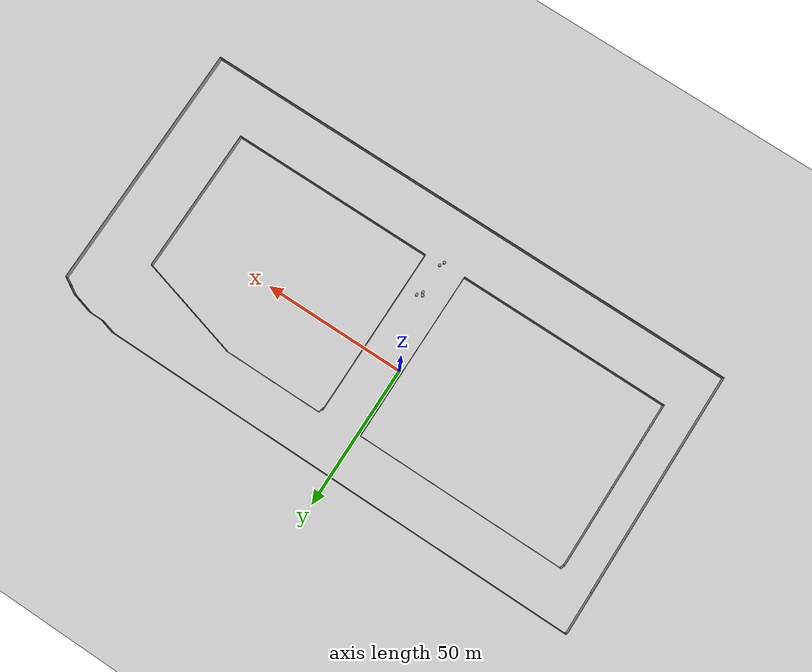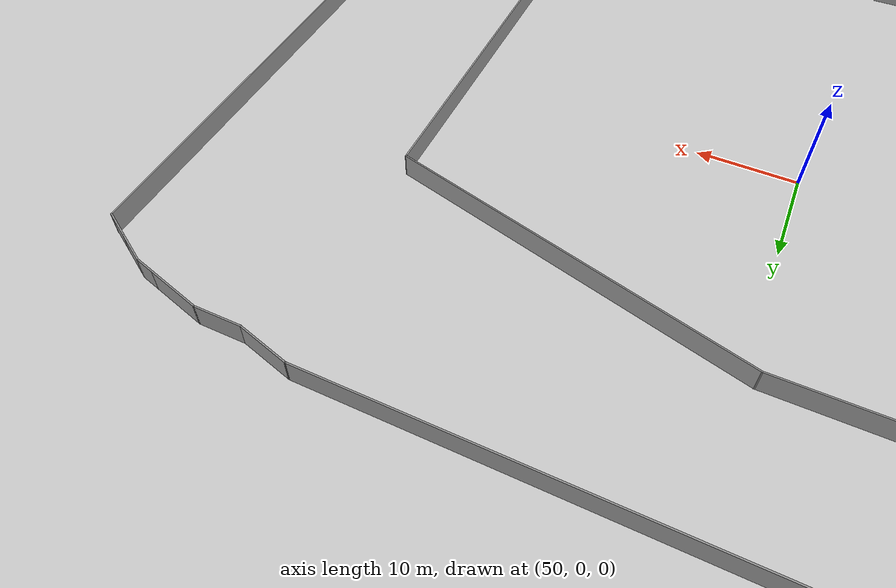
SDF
<sdf version="1.7">
 <world name="default">
  <model name="ground_plane">
   <static>1</static>
   <link name="link">
    <collision name="collision">
     <geometry><plane><normal>0 0 1</normal><size>300 300</size></plane></geometry>
     <surface><friction><ode><mu>100</mu><mu2>50</mu2></ode></friction></surface>
    </collision>
    <visual name="visual">
     <cast_shadows>0</cast_shadows>
     <geometry><plane><normal>0 0 1</normal><size>300 300</size></plane></geometry>
     <material>
      <script><uri>file://media/materials/scripts/gazebo.material</uri><name>Gazebo/Grey</name></script>
     </material>
    </visual>
   </link>
  </model>
  <model name="companywall">
   <pose>9.3749 -7.21654 0 0 -0 0</pose>
   <link name="Wall_0">
    <collision name="Wall_0_Collision">
     <geometry><box><size>29 0.15 2.5</size></box></geometry>
     <pose>0 0 1.25 0 -0 0</pose>
    </collision>
    <visual name="Wall_0_Visual">
     <pose>0 0 1.25 0 -0 0</pose>
     <geometry><box><size>29 0.15 2.5</size></box></geometry>
     <material>
      <script><uri>file://media/materials/scripts/gazebo.material</uri><name>Gazebo/Grey</name></script>
      <ambient>1 1 1 1</ambient>
     </material>
     <meta><layer>0</layer></meta>
    </visual>
    <pose>-84.9268 15.5781 0 0 -0 -1.5708</pose>
   </link>
   <link name="Wall_1">
    <collision name="Wall_1_Collision">
     <geometry><box><size>17.75 0.15 2.5</size></box></geometry>
     <pose>0 0 1.25 0 -0 0</pose>
    </collision>
    <visual name="Wall_1_Visual">
     <pose>0 0 1.25 0 -0 0</pose>
     <geometry><box><size>17.75 0.15 2.5</size></box></geometry>
     <material>
      <script><uri>file://media/materials/scripts/gazebo.material</uri><name>Gazebo/Grey</name></script>
      <ambient>1 1 1 1</ambient>
     </material>
     <meta><layer>0</layer></meta>
    </visual>
    <pose>-84.9268 -7.64687 0 0 -0 -1.5708</pose>
   </link>
   <link name="Wall_10">
    <collision name="Wall_10_Collision">
     <geometry><box><size>51 0.15 2.5</size></box></geometry>
     <pose>0 0 1.25 0 -0 0</pose>
    </collision>
    <visual name="Wall_10_Visual">
     <pose>0 0 1.25 0 -0 0</pose>
     <geometry><box><size>51 0.15 2.5</size></box></geometry>
     <material>
      <script><uri>file://media/materials/scripts/gazebo.material</uri><name>Gazebo/Grey</name></script>
      <ambient>1 1 1 1</ambient>
     </material>
     <meta><layer>0</layer></meta>
    </visual>
    <pose>75.708 -3.11663 0 0 -0 1.5708</pose>
   </link>
   <link name="Wall_11">
    <collision name="Wall_11_Collision">
     <geometry><box><size>37.5 0.15 2.5</size></box></geometry>
     <pose>0 0 1.25 0 -0 0</pose>
    </collision>
    <visual name="Wall_11_Visual">
     <pose>0 0 1.25 0 -0 0</pose>
     <geometry><box><size>37.5 0.15 2.5</size></box></geometry>
     <material>
      <script><uri>file://media/materials/scripts/gazebo.material</uri><name>Gazebo/Grey</name></script>
      <ambient>1 1 1 1</ambient>
     </material>
     <meta><layer>0</layer></meta>
    </visual>
    <pose>57.6694 27.1418 0 0 -0 2.87979</pose>
   </link>
   <link name="Wall_12">
    <collision name="Wall_12_Collision">
     <geometry><box><size>35 0.15 2.5</size></box></geometry>
     <pose>0 0 1.25 0 -0 0</pose>
    </collision>
    <visual name="Wall_12_Visual">
     <pose>0 0 1.25 0 -0 0</pose>
     <geometry><box><size>35 0.15 2.5</size></box></geometry>
     <material>
      <script><uri>file://media/materials/scripts/gazebo.material</uri><name>Gazebo/Grey</name></script>
      <ambient>1 1 1 1</ambient>
     </material>
     <meta><layer>0</layer></meta>
    </visual>
    <pose>22.2057 31.9753 0 0 -0 3.14159</pose>
   </link>
   <link name="Wall_13">
    <collision name="Wall_13_Collision">
     <geometry><box><size>2.25 0.15 2.5</size></box></geometry>
     <pose>0 0 1.25 0 -0 0</pose>
    </collision>
    <visual name="Wall_13_Visual">
     <pose>0 0 1.25 0 -0 0</pose>
     <geometry><box><size>2.25 0.15 2.5</size></box></geometry>
     <material>
      <script><uri>file://media/materials/scripts/gazebo.material</uri><name>Gazebo/Grey</name></script>
      <ambient>1 1 1 1</ambient>
     </material>
     <meta><layer>0</layer></meta>
    </visual>
    <pose>4.50894 30.961 0 0 -0 -1.8326</pose>
   </link>
   <link name="Wall_15">
    <collision name="Wall_15_Collision">
     <geometry><box><size>79.25 0.15 2.5</size></box></geometry>
     <pose>0 0 1.25 0 -0 0</pose>
    </collision>
    <visual name="Wall_15_Visual">
     <pose>0 0 1.25 0 -0 0</pose>
     <geometry><box><size>79.25 0.15 2.5</size></box></geometry>
     <material>
      <script><uri>file://media/materials/scripts/gazebo.material</uri><name>Gazebo/Grey</name></script>
      <ambient>1 1 1 1</ambient>
     </material>
     <meta><layer>0</layer></meta>
    </visual>
    <pose>-96.2655 -7.44183 0 0 -0 -1.5708</pose>
   </link>
   <link name="Wall_16">
    <collision name="Wall_16_Collision">
     <geometry><box><size>192.75 0.15 2.5</size></box></geometry>
     <pose>0 0 1.25 0 -0 0</pose>
    </collision>
    <visual name="Wall_16_Visual">
     <pose>0 0 1.25 0 -0 0</pose>
     <geometry><box><size>192.75 0.15 2.5</size></box></geometry>
     <material>
      <script><uri>file://media/materials/scripts/gazebo.material</uri><name>Gazebo/Grey</name></script>
      <ambient>1 1 1 1</ambient>
     </material>
     <meta><layer>0</layer></meta>
    </visual>
    <pose>0.03454 -46.9918 0 0 -0 0</pose>
   </link>
   <link name="Wall_17">
    <collision name="Wall_17_Collision">
     <geometry><box><size>87.5 0.15 2.5</size></box></geometry>
     <pose>0 0 1.25 0 -0 0</pose>
    </collision>
    <visual name="Wall_17_Visual">
     <pose>0 0 1.25 0 -0 0</pose>
     <geometry><box><size>87.5 0.15 2.5</size></box></geometry>
     <material>
      <script><uri>file://media/materials/scripts/gazebo.material</uri><name>Gazebo/Grey</name></script>
      <ambient>1 1 1 1</ambient>
     </material>
     <meta><layer>0</layer></meta>
    </visual>
    <pose>96.3345 -3.31683 0 0 -0 1.5708</pose>
   </link>
   <link name="Wall_18">
    <collision name="Wall_18_Collision">
     <geometry><box><size>3.25 0.15 2.5</size></box></geometry>
     <pose>0 0 1.25 0 -0 0</pose>
    </collision>
    <visual name="Wall_18_Visual">
     <pose>0 0 1.25 0 -0 0</pose>
     <geometry><box><size>3.25 0.15 2.5</size></box></geometry>
     <material>
      <script><uri>file://media/materials/scripts/gazebo.material</uri><name>Gazebo/Grey</name></script>
      <ambient>1 1 1 1</ambient>
     </material>
     <meta><layer>0</layer></meta>
    </visual>
    <pose>94.9922 41.1332 0 0 -0 2.61799</pose>
   </link>
   <link name="Wall_19">
    <collision name="Wall_19_Collision">
     <geometry><box><size>3.5 0.15 2.5</size></box></geometry>
     <pose>0 0 1.25 0 -0 0</pose>
    </collision>
    <visual name="Wall_19_Visual">
     <pose>0 0 1.25 0 -0 0</pose>
     <geometry><box><size>3.5 0.15 2.5</size></box></geometry>
     <material>
      <script><uri>file://media/materials/scripts/gazebo.material</uri><name>Gazebo/Grey</name></script>
      <ambient>1 1 1 1</ambient>
     </material>
     <meta><layer>0</layer></meta>
    </visual>
    <pose>92.1993 42.7457 0 0 -0 2.61799</pose>
   </link>
   <link name="Wall_2">
    <collision name="Wall_2_Collision">
     <geometry><box><size>13 0.15 2.5</size></box></geometry>
     <pose>0 0 1.25 0 -0 0</pose>
    </collision>
    <visual name="Wall_2_Visual">
     <pose>0 0 1.25 0 -0 0</pose>
     <geometry><box><size>13 0.15 2.5</size></box></geometry>
     <material>
      <script><uri>file://media/materials/scripts/gazebo.material</uri><name>Gazebo/Grey</name></script>
      <ambient>1 1 1 1</ambient>
     </material>
     <meta><layer>0</layer></meta>
    </visual>
    <pose>-84.9268 -22.8719 0 0 -0 -1.5708</pose>
   </link>
   <link name="Wall_20">
    <collision name="Wall_20_Collision">
     <geometry><box><size>2.25 0.15 2.5</size></box></geometry>
     <pose>0 0 1.25 0 -0 0</pose>
    </collision>
    <visual name="Wall_20_Visual">
     <pose>0 0 1.25 0 -0 0</pose>
     <geometry><box><size>2.25 0.15 2.5</size></box></geometry>
     <material>
      <script><uri>file://media/materials/scripts/gazebo.material</uri><name>Gazebo/Grey</name></script>
      <ambient>1 1 1 1</ambient>
     </material>
     <meta><layer>0</layer></meta>
    </visual>
    <pose>89.7345 43.8549 0 0 -0 2.87979</pose>
   </link>
   <link name="Wall_21">
    <collision name="Wall_21_Collision">
     <geometry><box><size>5.75 0.15 2.5</size></box></geometry>
     <pose>0 0 1.25 0 -0 0</pose>
    </collision>
    <visual name="Wall_21_Visual">
     <pose>0 0 1.25 0 -0 0</pose>
     <geometry><box><size>5.75 0.15 2.5</size></box></geometry>
     <material>
      <script><uri>file://media/materials/scripts/gazebo.material</uri><name>Gazebo/Grey</name></script>
      <ambient>1 1 1 1</ambient>
     </material>
     <meta><layer>0</layer></meta>
    </visual>
    <pose>86.0156 44.8514 0 0 -0 2.87979</pose>
   </link>
   <link name="Wall_22">
    <collision name="Wall_22_Collision">
     <geometry><box><size>4.75 0.15 2.5</size></box></geometry>
     <pose>0 0 1.25 0 -0 0</pose>
    </collision>
    <visual name="Wall_22_Visual">
     <pose>0 0 1.25 0 -0 0</pose>
     <geometry><box><size>4.75 0.15 2.5</size></box></geometry>
     <material>
      <script><uri>file://media/materials/scripts/gazebo.material</uri><name>Gazebo/Grey</name></script>
      <ambient>1 1 1 1</ambient>
     </material>
     <meta><layer>0</layer></meta>
    </visual>
    <pose>81.011 45.5761 0 0 -0 3.14159</pose>
   </link>
   <link name="Wall_23">
    <collision name="Wall_23_Collision">
     <geometry><box><size>5.5 0.15 2.5</size></box></geometry>
     <pose>0 0 1.25 0 -0 0</pose>
    </collision>
    <visual name="Wall_23_Visual">
     <pose>0 0 1.25 0 -0 0</pose>
     <geometry><box><size>5.5 0.15 2.5</size></box></geometry>
     <material>
      <script><uri>file://media/materials/scripts/gazebo.material</uri><name>Gazebo/Grey</name></script>
      <ambient>1 1 1 1</ambient>
     </material>
     <meta><layer>0</layer></meta>
    </visual>
    <pose>76.1272 46.2684 0 0 -0 2.87979</pose>
   </link>
   <link name="Wall_24">
    <collision name="Wall_24_Collision">
     <geometry><box><size>168.25 0.15 2.5</size></box></geometry>
     <pose>0 0 1.25 0 -0 0</pose>
    </collision>
    <visual name="Wall_24_Visual">
     <pose>0 0 1.25 0 -0 0</pose>
     <geometry><box><size>168.25 0.15 2.5</size></box></geometry>
     <material>
      <script><uri>file://media/materials/scripts/gazebo.material</uri><name>Gazebo/Grey</name></script>
      <ambient>1 1 1 1</ambient>
     </material>
     <meta><layer>0</layer></meta>
    </visual>
    <pose>-10.5067 46.9608 0 0 -0 3.14159</pose>
   </link>
   <link name="Wall_25">
    <collision name="Wall_25_Collision">
     <geometry><box><size>1.5 0.15 2.5</size></box></geometry>
     <pose>0 0 1.25 0 -0 0</pose>
    </collision>
    <visual name="Wall_25_Visual">
     <pose>0 0 1.25 0 -0 0</pose>
     <geometry><box><size>1.5 0.15 2.5</size></box></geometry>
     <material>
      <script><uri>file://media/materials/scripts/gazebo.material</uri><name>Gazebo/Grey</name></script>
      <ambient>1 1 1 1</ambient>
     </material>
     <meta><layer>0</layer></meta>
    </visual>
    <pose>-95.2317 46.9608 0 0 -0 3.14159</pose>
   </link>
   <link name="Wall_26">
    <collision name="Wall_26_Collision">
     <geometry><box><size>0.75 0.15 2.5</size></box></geometry>
     <pose>0 0 1.25 0 -0 0</pose>
    </collision>
    <visual name="Wall_26_Visual">
     <pose>0 0 1.25 0 -0 0</pose>
     <geometry><box><size>0.75 0.15 2.5</size></box></geometry>
     <material>
      <script><uri>file://media/materials/scripts/gazebo.material</uri><name>Gazebo/Grey</name></script>
      <ambient>1 1 1 1</ambient>
     </material>
     <meta><layer>0</layer></meta>
    </visual>
    <pose>-96.1188 46.7486 0 0 -0 -2.35619</pose>
   </link>
   <link name="Wall_27">
    <collision name="Wall_27_Collision">
     <geometry><box><size>18.75 0.15 2.5</size></box></geometry>
     <pose>0 0 1.25 0 -0 0</pose>
    </collision>
    <visual name="Wall_27_Visual">
     <pose>0 0 1.25 0 -0 0</pose>
     <geometry><box><size>18.75 0.15 2.5</size></box></geometry>
     <material>
      <script><uri>file://media/materials/scripts/gazebo.material</uri><name>Gazebo/Grey</name></script>
      <ambient>1 1 1 1</ambient>
     </material>
     <meta><layer>0</layer></meta>
    </visual>
    <pose>-96.3309 37.2365 0 0 -0 -1.5708</pose>
   </link>
   <link name="Wall_3">
    <collision name="Wall_3_Collision">
     <geometry><box><size>74.75 0.15 2.5</size></box></geometry>
     <pose>0 0 1.25 0 -0 0</pose>
    </collision>
    <visual name="Wall_3_Visual">
     <pose>0 0 1.25 0 -0 0</pose>
     <geometry><box><size>74.75 0.15 2.5</size></box></geometry>
     <material>
      <script><uri>file://media/materials/scripts/gazebo.material</uri><name>Gazebo/Grey</name></script>
      <ambient>1 1 1 1</ambient>
     </material>
     <meta><layer>0</layer></meta>
    </visual>
    <pose>-47.6268 -29.2969 0 0 -0 0</pose>
   </link>
   <link name="Wall_4">
    <collision name="Wall_4_Collision">
     <geometry><box><size>60.5 0.15 2.5</size></box></geometry>
     <pose>0 0 1.25 0 -0 0</pose>
    </collision>
    <visual name="Wall_4_Visual">
     <pose>0 0 1.25 0 -0 0</pose>
     <geometry><box><size>60.5 0.15 2.5</size></box></geometry>
     <material>
      <script><uri>file://media/materials/scripts/gazebo.material</uri><name>Gazebo/Grey</name></script>
      <ambient>1 1 1 1</ambient>
     </material>
     <meta><layer>0</layer></meta>
    </visual>
    <pose>-10.3268 0.878135 0 0 -0 1.5708</pose>
   </link>
   <link name="Wall_5">
    <collision name="Wall_5_Collision">
     <geometry><box><size>74.25 0.15 2.5</size></box></geometry>
     <pose>0 0 1.25 0 -0 0</pose>
    </collision>
    <visual name="Wall_5_Visual">
     <pose>0 0 1.25 0 -0 0</pose>
     <geometry><box><size>74.25 0.15 2.5</size></box></geometry>
     <material>
      <script><uri>file://media/materials/scripts/gazebo.material</uri><name>Gazebo/Grey</name></script>
      <ambient>1 1 1 1</ambient>
     </material>
     <meta><layer>0</layer></meta>
    </visual>
    <pose>-47.3768 31.0531 0 0 -0 3.14159</pose>
   </link>
   <link name="Wall_6">
    <collision name="Wall_6_Collision">
     <geometry><box><size>1.5 0.15 2.5</size></box></geometry>
     <pose>0 0 1.25 0 -0 0</pose>
    </collision>
    <visual name="Wall_6_Visual">
     <pose>0 0 1.25 0 -0 0</pose>
     <geometry><box><size>1.5 0.15 2.5</size></box></geometry>
     <material>
      <script><uri>file://media/materials/scripts/gazebo.material</uri><name>Gazebo/Grey</name></script>
      <ambient>1 1 1 1</ambient>
     </material>
     <meta><layer>0</layer></meta>
    </visual>
    <pose>-84.6015 30.4011 0 0 -0 -1.8326</pose>
   </link>
   <link name="Wall_8">
    <collision name="Wall_8_Collision">
     <geometry><box><size>59.5 0.15 2.5</size></box></geometry>
     <pose>0 0 1.25 0 -0 0</pose>
    </collision>
    <visual name="Wall_8_Visual">
     <pose>0 0 1.25 0 -0 0</pose>
     <geometry><box><size>59.5 0.15 2.5</size></box></geometry>
     <material>
      <script><uri>file://media/materials/scripts/gazebo.material</uri><name>Gazebo/Grey</name></script>
      <ambient>1 1 1 1</ambient>
     </material>
     <meta><layer>0</layer></meta>
    </visual>
    <pose>4.10803 1.13337 0 0 -0 -1.5708</pose>
   </link>
   <link name="Wall_9">
    <collision name="Wall_9_Collision">
     <geometry><box><size>71.75 0.15 2.5</size></box></geometry>
     <pose>0 0 1.25 0 -0 0</pose>
    </collision>
    <visual name="Wall_9_Visual">
     <pose>0 0 1.25 0 -0 0</pose>
     <geometry><box><size>71.75 0.15 2.5</size></box></geometry>
     <material>
      <script><uri>file://media/materials/scripts/gazebo.material</uri><name>Gazebo/Grey</name></script>
      <ambient>1 1 1 1</ambient>
     </material>
     <meta><layer>0</layer></meta>
    </visual>
    <pose>39.908 -28.5416 0 0 -0 0</pose>
   </link>
   <static>1</static>
  </model>
  <model name="unit_cylinder_80">
   <pose>7.08505 -37.1751 0.499883 0 -0 -0.831436</pose>
   <link name="link">
    <inertial>
     <mass>1</mass>
     <inertia><ixx>0.145833</ixx><ixy>0</ixy><ixz>0</ixz><iyy>0.145833</iyy><iyz>0</iyz><izz>0.125</izz></inertia>
    </inertial>
    <collision name="collision">
     <geometry><cylinder><radius>0.5</radius><length>1</length></cylinder></geometry>
    </collision>
    <visual name="visual">
     <geometry><cylinder><radius>0.5</radius><length>1</length></cylinder></geometry>
     <material>
      <script><name>Gazebo/Grey</name><uri>file://media/materials/scripts/gazebo.material</uri></script>
     </material>
    </visual>
   </link>
  </model>
  <model name="unit_cylinder_81">
   <pose>7.60823 -25.3118 0.499883 0 -0 -0.993011</pose>
   <link name="link">
    <inertial>
     <mass>1</mass>
     <inertia><ixx>0.145833</ixx><ixy>0</ixy><ixz>0</ixz><iyy>0.145833</iyy><iyz>0</iyz><izz>0.125</izz></inertia>
    </inertial>
    <collision name="collision">
     <geometry><cylinder><radius>0.5</radius><length>1</length></cylinder></geometry>
    </collision>
    <visual name="visual">
     <geometry><cylinder><radius>0.5</radius><length>1</length></cylinder></geometry>
     <material>
      <script><name>Gazebo/Grey</name><uri>file://media/materials/scripts/gazebo.material</uri></script>
     </material>
    </visual>
   </link>
  </model>
  <model name="unit_cylinder_90">
   <pose>7.07629 -24.465 0.499883 0 -0 1.36218</pose>
   <link name="link">
    <inertial>
     <mass>1</mass>
     <inertia><ixx>0.145833</ixx><ixy>0</ixy><ixz>0</ixz><iyy>0.145833</iyy><iyz>0</iyz><izz>0.125</izz></inertia>
    </inertial>
    <collision name="collision">
     <geometry><cylinder><radius>0.5</radius><length>1</length></cylinder></geometry>
    </collision>
    <visual name="visual">
     <geometry><cylinder><radius>0.5</radius><length>1</length></cylinder></geometry>
     <material>
      <script><name>Gazebo/Grey</name><uri>file://media/materials/scripts/gazebo.material</uri></script>
     </material>
    </visual>
   </link>
  </model>
  <model name="unit_cylinder_78">
   <pose>7.86569 -35.6638 0.499883 0 -0 0</pose>
   <link name="link">
    <inertial>
     <mass>1</mass>
     <inertia><ixx>0.145833</ixx><ixy>0</ixy><ixz>0</ixz><iyy>0.145833</iyy><iyz>0</iyz><izz>0.125</izz></inertia>
    </inertial>
    <collision name="collision">
     <geometry><cylinder><radius>0.5</radius><length>1</length></cylinder></geometry>
    </collision>
    <visual name="visual">
     <geometry><cylinder><radius>0.5</radius><length>1</length></cylinder></geometry>
     <material>
      <script><name>Gazebo/Grey</name><uri>file://media/materials/scripts/gazebo.material</uri></script>
     </material>
    </visual>
   </link>
  </model>
  <model name="unit_cylinder_79">
   <pose>8.80878 -23.6489 0.499883 0 -0 0</pose>
   <link name="link">
    <inertial>
     <mass>1</mass>
     <inertia><ixx>0.145833</ixx><ixy>0</ixy><ixz>0</ixz><iyy>0.145833</iyy><iyz>0</iyz><izz>0.125</izz></inertia>
    </inertial>
    <collision name="collision">
     <geometry><cylinder><radius>0.5</radius><length>1</length></cylinder></geometry>
    </collision>
    <visual name="visual">
     <geometry><cylinder><radius>0.5</radius><length>1</length></cylinder></geometry>
     <material>
      <script><name>Gazebo/Grey</name><uri>file://media/materials/scripts/gazebo.material</uri></script>
     </material>
    </visual>
   </link>
  </model>
 </world>
</sdf>
